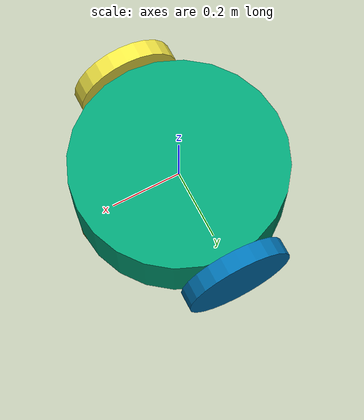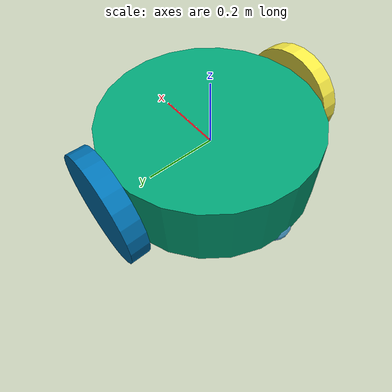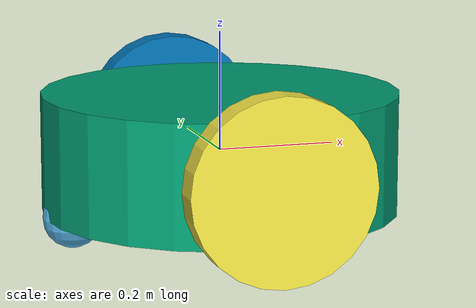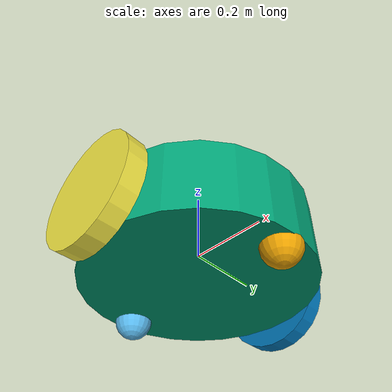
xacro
<?xml version="1.0" ?>
<robot name="my_robot_model">
  <joint name="my_robot_model__link_0_clone_JOINT_1_0" type="fixed">
    <parent link="my_robot_model__link_0_clone"/>
    <child link="my_robot_model__link_0_0"/>
    <origin rpy="0  0  0" xyz="0.25095  0.00049 -0.1"/>
    <axis xyz="0  0  0"/>
    <limit effort="0" lower="0" upper="0" velocity="0"/>
  </joint>
  <joint name="my_robot_model__link_0_clone_JOINT_1" type="revolute">
    <parent link="my_robot_model__link_0_clone"/>
    <child link="my_robot_model__link_2"/>
    <origin rpy="1.5707  0      0" xyz="0      -0.32501  0"/>
    <axis xyz="0.00000000e+00   1.00000000e+00   9.00000000e-05"/>
    <limit effort="-1.0" lower="-1.79769e+308" upper="1.79769e+308" velocity="-1.0"/>
  </joint>
  <joint name="my_robot_model__link_0_clone_JOINT_2_0" type="fixed">
    <parent link="my_robot_model__link_0_clone"/>
    <child link="my_robot_model__link_0_0_clone"/>
    <origin rpy="0  0  0" xyz="-0.25404  0.00049 -0.1"/>
    <axis xyz="0  0  0"/>
    <limit effort="0" lower="0" upper="0" velocity="0"/>
  </joint>
  <joint name="my_robot_model__link_0_clone_JOINT_2" type="revolute">
    <parent link="my_robot_model__link_0_clone"/>
    <child link="my_robot_model__link_2_clone"/>
    <origin rpy="1.5707  0      0" xyz="0       0.32501  0"/>
    <axis xyz="0.00000000e+00   1.00000000e+00   9.00000000e-05"/>
    <limit effort="-1.0" lower="-1.79769e+308" upper="1.79769e+308" velocity="-1.0"/>
  </joint>
  <link name="my_robot_model__link_0_0">
    <inertial>
      <mass value="1"/>
      <origin rpy="0  0  0" xyz="0  0  0"/>
      <inertia ixx="0.1" ixy="0" ixz="0" iyy="0.1" iyz="0" izz="0.1"/>
    </inertial>
    <collision name="my_robot_model__collision">
      <origin rpy="0  0  0" xyz="0  0  0"/>
      <geometry>
        <sphere radius="0.05"/>
      </geometry>
    </collision>
    <visual name="my_robot_model__visual">
      <origin rpy="0  0  0" xyz="0  0  0"/>
      <geometry>
        <sphere radius="0.05"/>
      </geometry>
    </visual>
  </link>
  <link name="my_robot_model__link_0_0_clone">
    <inertial>
      <mass value="1"/>
      <origin rpy="0  0  0" xyz="0  0  0"/>
      <inertia ixx="0.1" ixy="0" ixz="0" iyy="0.1" iyz="0" izz="0.1"/>
    </inertial>
    <collision name="my_robot_model__collision">
      <origin rpy="0  0  0" xyz="0  0  0"/>
      <geometry>
        <sphere radius="0.05"/>
      </geometry>
    </collision>
    <visual name="my_robot_model__visual_0">
      <origin rpy="0  0  0" xyz="0  0  0"/>
      <geometry>
        <sphere radius="0.05"/>
      </geometry>
    </visual>
  </link>
  <link name="my_robot_model__link_0_clone">
    <inertial>
      <mass value="1"/>
      <origin rpy="0  0  0" xyz="0  0  0"/>
      <inertia ixx="0.145833" ixy="0" ixz="0" iyy="0.145833" iyz="0" izz="0.125"/>
    </inertial>
    <collision name="my_robot_model__collision">
      <origin rpy="0  0  0" xyz="0  0  0"/>
      <geometry>
        <cylinder length="0.2" radius="0.3"/>
      </geometry>
    </collision>
    <visual name="my_robot_model__visual">
      <origin rpy="0  0  0" xyz="0  0  0"/>
      <geometry>
        <cylinder length="0.2" radius="0.3"/>
      </geometry>
    </visual>
  </link>
  <link name="my_robot_model__link_2">
    <inertial>
      <mass value="1"/>
      <origin rpy="0  0  0" xyz="0  0  0"/>
      <inertia ixx="0.145833" ixy="0" ixz="0" iyy="0.145833" iyz="0" izz="0.125"/>
    </inertial>
    <collision name="my_robot_model__collision">
      <origin rpy="0  0  0" xyz="0  0  0"/>
      <geometry>
        <cylinder length="0.05" radius="0.15"/>
      </geometry>
    </collision>
    <visual name="my_robot_model__visual">
      <origin rpy="0  0  0" xyz="0  0  0"/>
      <geometry>
        <cylinder length="0.05" radius="0.15"/>
      </geometry>
    </visual>
  </link>
  <link name="my_robot_model__link_2_clone">
    <inertial>
      <mass value="1"/>
      <origin rpy="0  0  0" xyz="0  0  0"/>
      <inertia ixx="0.145833" ixy="0" ixz="0" iyy="0.145833" iyz="0" izz="0.125"/>
    </inertial>
    <collision name="my_robot_model__collision">
      <origin rpy="0  0  0" xyz="0  0  0"/>
      <geometry>
        <cylinder length="0.05" radius="0.15"/>
      </geometry>
    </collision>
    <visual name="my_robot_model__visual">
      <origin rpy="0  0  0" xyz="0  0  0"/>
      <geometry>
        <cylinder length="0.05" radius="0.15"/>
      </geometry>
    </visual>
  </link>
</robot>
